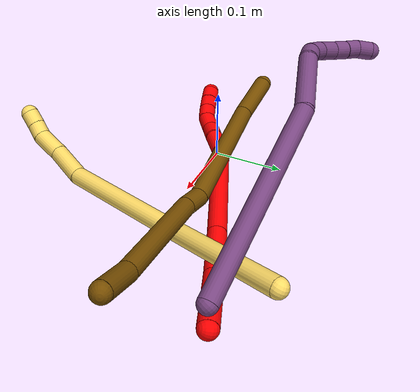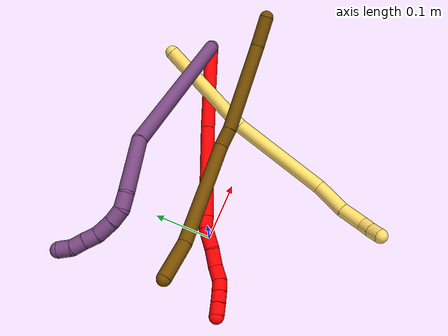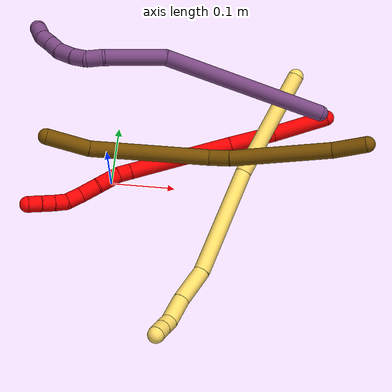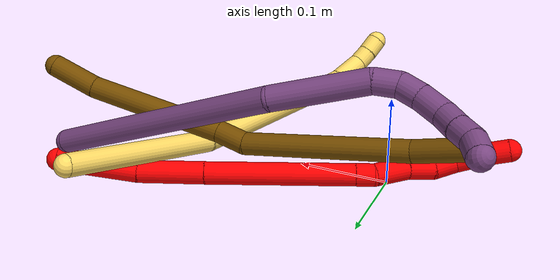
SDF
<sdf version="1.7">
 <world name="default">
  <model name="2">
   <static>0</static>
   <link name="2">
    <collision name="collision-cylinder-e_1_1_4">
     <pose>-0.034417 -0.021229 0.018139 0.863728 -0.889203 -0.432279</pose>
     <geometry><cylinder><radius>0.0125</radius><length>0.088639</length></cylinder></geometry>
     <surface>
      <friction><ode><mu>1.16</mu><mu2>1.16</mu2><slip1>0</slip1><slip2>0</slip2></ode></friction>
      <contact><ode><kp>1e+06</kp><kd>1</kd><max_vel>0</max_vel><min_depth>0.001</min_depth></ode></contact>
     </surface>
    </collision>
    <visual name="visual-cylinder-e_1_1_4">
     <pose>-0.034417 -0.021229 0.018139 0.863728 -0.889203 -0.432279</pose>
     <geometry><cylinder><radius>0.0125</radius><length>0.088639</length></cylinder></geometry>
     <material><ambient>1 0 0 1</ambient></material>
    </visual>
    <collision name="collision-cylinder-e_2_4_5">
     <pose>-0.095466 -0.06404 0.048982 1.03876 -0.816106 -0.484634</pose>
     <geometry><cylinder><radius>0.0125</radius><length>0.073114</length></cylinder></geometry>
     <surface>
      <friction><ode><mu>1.16</mu><mu2>1.16</mu2><slip1>0</slip1><slip2>0</slip2></ode></friction>
      <contact><ode><kp>1e+06</kp><kd>1</kd><max_vel>0</max_vel><min_depth>0.001</min_depth></ode></contact>
     </surface>
    </collision>
    <visual name="visual-cylinder-e_2_4_5">
     <pose>-0.095466 -0.06404 0.048982 1.03876 -0.816106 -0.484634</pose>
     <geometry><cylinder><radius>0.0125</radius><length>0.073114</length></cylinder></geometry>
     <material><ambient>1 0 0 1</ambient></material>
    </visual>
    <collision name="collision-cylinder-e_3_5_6">
     <pose>-0.182433 -0.133904 0.088757 1.0598 -0.828446 -0.504135</pose>
     <geometry><cylinder><radius>0.0125</radius><length>0.16376</length></cylinder></geometry>
     <surface>
      <friction><ode><mu>1.16</mu><mu2>1.16</mu2><slip1>0</slip1><slip2>0</slip2></ode></friction>
      <contact><ode><kp>1e+06</kp><kd>1</kd><max_vel>0</max_vel><min_depth>0.001</min_depth></ode></contact>
     </surface>
    </collision>
    <visual name="visual-cylinder-e_3_5_6">
     <pose>-0.182433 -0.133904 0.088757 1.0598 -0.828446 -0.504135</pose>
     <geometry><cylinder><radius>0.0125</radius><length>0.16376</length></cylinder></geometry>
     <material><ambient>1 0 0 1</ambient></material>
    </visual>
    <collision name="collision-cylinder-e_4_6_7">
     <pose>-0.250382 -0.188253 0.119227 1.06001 -0.830535 -0.505622</pose>
     <geometry><cylinder><radius>0.0125</radius><length>0.020625</length></cylinder></geometry>
     <surface>
      <friction><ode><mu>1.16</mu><mu2>1.16</mu2><slip1>0</slip1><slip2>0</slip2></ode></friction>
      <contact><ode><kp>1e+06</kp><kd>1</kd><max_vel>0</max_vel><min_depth>0.001</min_depth></ode></contact>
     </surface>
    </collision>
    <visual name="visual-cylinder-e_4_6_7">
     <pose>-0.250382 -0.188253 0.119227 1.06001 -0.830535 -0.505622</pose>
     <geometry><cylinder><radius>0.0125</radius><length>0.020625</length></cylinder></geometry>
     <material><ambient>1 0 0 1</ambient></material>
    </visual>
    <collision name="collision-cylinder-e_5_7_8">
     <pose>-0.273144 -0.20528 0.123243 1.51467 -0.94374 -0.899028</pose>
     <geometry><cylinder><radius>0.0125</radius><length>0.037413</length></cylinder></geometry>
     <surface>
      <friction><ode><mu>1.16</mu><mu2>1.16</mu2><slip1>0</slip1><slip2>0</slip2></ode></friction>
      <contact><ode><kp>1e+06</kp><kd>1</kd><max_vel>0</max_vel><min_depth>0.001</min_depth></ode></contact>
     </surface>
    </collision>
    <visual name="visual-cylinder-e_5_7_8">
     <pose>-0.273144 -0.20528 0.123243 1.51467 -0.94374 -0.899028</pose>
     <geometry><cylinder><radius>0.0125</radius><length>0.037413</length></cylinder></geometry>
     <material><ambient>1 0 0 1</ambient></material>
    </visual>
    <collision name="collision-cylinder-e_6_8_9">
     <pose>-0.301272 -0.223167 0.126574 1.19727 -1.05029 -0.752788</pose>
     <geometry><cylinder><radius>0.0125</radius><length>0.029922</length></cylinder></geometry>
     <surface>
      <friction><ode><mu>1.16</mu><mu2>1.16</mu2><slip1>0</slip1><slip2>0</slip2></ode></friction>
      <contact><ode><kp>1e+06</kp><kd>1</kd><max_vel>0</max_vel><min_depth>0.001</min_depth></ode></contact>
     </surface>
    </collision>
    <visual name="visual-cylinder-e_6_8_9">
     <pose>-0.301272 -0.223167 0.126574 1.19727 -1.05029 -0.752788</pose>
     <geometry><cylinder><radius>0.0125</radius><length>0.029922</length></cylinder></geometry>
     <material><ambient>1 0 0 1</ambient></material>
    </visual>
    <collision name="collision-cylinder-e_7_9_10">
     <pose>-0.323887 -0.238626 0.129174 1.58425 -0.846059 -0.856174</pose>
     <geometry><cylinder><radius>0.0125</radius><length>0.025741</length></cylinder></geometry>
     <surface>
      <friction><ode><mu>1.16</mu><mu2>1.16</mu2><slip1>0</slip1><slip2>0</slip2></ode></friction>
      <contact><ode><kp>1e+06</kp><kd>1</kd><max_vel>0</max_vel><min_depth>0.001</min_depth></ode></contact>
     </surface>
    </collision>
    <visual name="visual-cylinder-e_7_9_10">
     <pose>-0.323887 -0.238626 0.129174 1.58425 -0.846059 -0.856174</pose>
     <geometry><cylinder><radius>0.0125</radius><length>0.025741</length></cylinder></geometry>
     <material><ambient>1 0 0 1</ambient></material>
    </visual>
    <collision name="collision-cylinder-e_8_10_11">
     <pose>-0.339179 -0.255248 0.131413 1.2877 -0.591191 -0.449387</pose>
     <geometry><cylinder><radius>0.0125</radius><length>0.020297</length></cylinder></geometry>
     <surface>
      <friction><ode><mu>1.16</mu><mu2>1.16</mu2><slip1>0</slip1><slip2>0</slip2></ode></friction>
      <contact><ode><kp>1e+06</kp><kd>1</kd><max_vel>0</max_vel><min_depth>0.001</min_depth></ode></contact>
     </surface>
    </collision>
    <visual name="visual-cylinder-e_8_10_11">
     <pose>-0.339179 -0.255248 0.131413 1.2877 -0.591191 -0.449387</pose>
     <geometry><cylinder><radius>0.0125</radius><length>0.020297</length></cylinder></geometry>
     <material><ambient>1 0 0 1</ambient></material>
    </visual>
    <collision name="collision-cylinder-e_9_11_12">
     <pose>-0.350062 -0.271512 0.136502 1.24793 -0.545094 -0.39713</pose>
     <geometry><cylinder><radius>0.0125</radius><length>0.020161</length></cylinder></geometry>
     <surface>
      <friction><ode><mu>1.16</mu><mu2>1.16</mu2><slip1>0</slip1><slip2>0</slip2></ode></friction>
      <contact><ode><kp>1e+06</kp><kd>1</kd><max_vel>0</max_vel><min_depth>0.001</min_depth></ode></contact>
     </surface>
    </collision>
    <visual name="visual-cylinder-e_9_11_12">
     <pose>-0.350062 -0.271512 0.136502 1.24793 -0.545094 -0.39713</pose>
     <geometry><cylinder><radius>0.0125</radius><length>0.020161</length></cylinder></geometry>
     <material><ambient>1 0 0 1</ambient></material>
    </visual>
    <collision name="collision-cylinder-e_10_12_2">
     <pose>-0.360792 -0.287573 0.142527 1.17549 -0.572186 -0.387092</pose>
     <geometry><cylinder><radius>0.0125</radius><length>0.020328</length></cylinder></geometry>
     <surface>
      <friction><ode><mu>1.16</mu><mu2>1.16</mu2><slip1>0</slip1><slip2>0</slip2></ode></friction>
      <contact><ode><kp>1e+06</kp><kd>1</kd><max_vel>0</max_vel><min_depth>0.001</min_depth></ode></contact>
     </surface>
    </collision>
    <visual name="visual-cylinder-e_10_12_2">
     <pose>-0.360792 -0.287573 0.142527 1.17549 -0.572186 -0.387092</pose>
     <geometry><cylinder><radius>0.0125</radius><length>0.020328</length></cylinder></geometry>
     <material><ambient>1 0 0 1</ambient></material>
    </visual>
    <collision name="collision-sphere-2">
     <pose>-0.366296 -0.295458 0.145818 0 -0 0</pose>
     <geometry><sphere><radius>0.0125</radius></sphere></geometry>
     <surface>
      <friction><ode><mu>1.16</mu><mu2>1.16</mu2><slip1>0</slip1><slip2>0</slip2></ode></friction>
      <contact><ode><kp>1e+06</kp><kd>1</kd><max_vel>0</max_vel><min_depth>0.001</min_depth></ode></contact>
     </surface>
    </collision>
    <visual name="visual-sphere-2">
     <pose>-0.366296 -0.295458 0.145818 0 -0 0</pose>
     <geometry><sphere><radius>0.0125</radius></sphere></geometry>
     <material><ambient>1 0 0 1</ambient></material>
    </visual>
    <collision name="collision-sphere-12">
     <pose>-0.355289 -0.279687 0.139236 0 -0 0</pose>
     <geometry><sphere><radius>0.0125</radius></sphere></geometry>
     <surface>
      <friction><ode><mu>1.16</mu><mu2>1.16</mu2><slip1>0</slip1><slip2>0</slip2></ode></friction>
      <contact><ode><kp>1e+06</kp><kd>1</kd><max_vel>0</max_vel><min_depth>0.001</min_depth></ode></contact>
     </surface>
    </collision>
    <visual name="visual-sphere-12">
     <pose>-0.355289 -0.279687 0.139236 0 -0 0</pose>
     <geometry><sphere><radius>0.0125</radius></sphere></geometry>
     <material><ambient>1 0 0 1</ambient></material>
    </visual>
    <collision name="collision-sphere-11">
     <pose>-0.344835 -0.263338 0.133767 0 -0 0</pose>
     <geometry><sphere><radius>0.0125</radius></sphere></geometry>
     <surface>
      <friction><ode><mu>1.16</mu><mu2>1.16</mu2><slip1>0</slip1><slip2>0</slip2></ode></friction>
      <contact><ode><kp>1e+06</kp><kd>1</kd><max_vel>0</max_vel><min_depth>0.001</min_depth></ode></contact>
     </surface>
    </collision>
    <visual name="visual-sphere-11">
     <pose>-0.344835 -0.263338 0.133767 0 -0 0</pose>
     <geometry><sphere><radius>0.0125</radius></sphere></geometry>
     <material><ambient>1 0 0 1</ambient></material>
    </visual>
    <collision name="collision-sphere-10">
     <pose>-0.333523 -0.247157 0.129059 0 -0 0</pose>
     <geometry><sphere><radius>0.0125</radius></sphere></geometry>
     <surface>
      <friction><ode><mu>1.16</mu><mu2>1.16</mu2><slip1>0</slip1><slip2>0</slip2></ode></friction>
      <contact><ode><kp>1e+06</kp><kd>1</kd><max_vel>0</max_vel><min_depth>0.001</min_depth></ode></contact>
     </surface>
    </collision>
    <visual name="visual-sphere-10">
     <pose>-0.333523 -0.247157 0.129059 0 -0 0</pose>
     <geometry><sphere><radius>0.0125</radius></sphere></geometry>
     <material><ambient>1 0 0 1</ambient></material>
    </visual>
    <collision name="collision-sphere-9">
     <pose>-0.314251 -0.230094 0.129289 0 -0 0</pose>
     <geometry><sphere><radius>0.0125</radius></sphere></geometry>
     <surface>
      <friction><ode><mu>1.16</mu><mu2>1.16</mu2><slip1>0</slip1><slip2>0</slip2></ode></friction>
      <contact><ode><kp>1e+06</kp><kd>1</kd><max_vel>0</max_vel><min_depth>0.001</min_depth></ode></contact>
     </surface>
    </collision>
    <visual name="visual-sphere-9">
     <pose>-0.314251 -0.230094 0.129289 0 -0 0</pose>
     <geometry><sphere><radius>0.0125</radius></sphere></geometry>
     <material><ambient>1 0 0 1</ambient></material>
    </visual>
    <collision name="collision-sphere-4">
     <pose>-0.068835 -0.042458 0.036278 0 -0 0</pose>
     <geometry><sphere><radius>0.0125</radius></sphere></geometry>
     <surface>
      <friction><ode><mu>1.16</mu><mu2>1.16</mu2><slip1>0</slip1><slip2>0</slip2></ode></friction>
      <contact><ode><kp>1e+06</kp><kd>1</kd><max_vel>0</max_vel><min_depth>0.001</min_depth></ode></contact>
     </surface>
    </collision>
    <visual name="visual-sphere-4">
     <pose>-0.068835 -0.042458 0.036278 0 -0 0</pose>
     <geometry><sphere><radius>0.0125</radius></sphere></geometry>
     <material><ambient>1 0 0 1</ambient></material>
    </visual>
    <collision name="collision-sphere-1">
     <geometry><sphere><radius>0.0125</radius></sphere></geometry>
     <surface>
      <friction><ode><mu>1.16</mu><mu2>1.16</mu2><slip1>0</slip1><slip2>0</slip2></ode></friction>
      <contact><ode><kp>1e+06</kp><kd>1</kd><max_vel>0</max_vel><min_depth>0.001</min_depth></ode></contact>
     </surface>
    </collision>
    <visual name="visual-sphere-1">
     <geometry><sphere><radius>0.0125</radius></sphere></geometry>
     <material><ambient>1 0 0 1</ambient></material>
    </visual>
    <collision name="collision-sphere-8">
     <pose>-0.288292 -0.216239 0.123859 0 -0 0</pose>
     <geometry><sphere><radius>0.0125</radius></sphere></geometry>
     <surface>
      <friction><ode><mu>1.16</mu><mu2>1.16</mu2><slip1>0</slip1><slip2>0</slip2></ode></friction>
      <contact><ode><kp>1e+06</kp><kd>1</kd><max_vel>0</max_vel><min_depth>0.001</min_depth></ode></contact>
     </surface>
    </collision>
    <visual name="visual-sphere-8">
     <pose>-0.288292 -0.216239 0.123859 0 -0 0</pose>
     <geometry><sphere><radius>0.0125</radius></sphere></geometry>
     <material><ambient>1 0 0 1</ambient></material>
    </visual>
    <collision name="collision-sphere-5">
     <pose>-0.122097 -0.085622 0.061687 0 -0 0</pose>
     <geometry><sphere><radius>0.0125</radius></sphere></geometry>
     <surface>
      <friction><ode><mu>1.16</mu><mu2>1.16</mu2><slip1>0</slip1><slip2>0</slip2></ode></friction>
      <contact><ode><kp>1e+06</kp><kd>1</kd><max_vel>0</max_vel><min_depth>0.001</min_depth></ode></contact>
     </surface>
    </collision>
    <visual name="visual-sphere-5">
     <pose>-0.122097 -0.085622 0.061687 0 -0 0</pose>
     <geometry><sphere><radius>0.0125</radius></sphere></geometry>
     <material><ambient>1 0 0 1</ambient></material>
    </visual>
    <collision name="collision-sphere-6">
     <pose>-0.242769 -0.182185 0.115827 0 -0 0</pose>
     <geometry><sphere><radius>0.0125</radius></sphere></geometry>
     <surface>
      <friction><ode><mu>1.16</mu><mu2>1.16</mu2><slip1>0</slip1><slip2>0</slip2></ode></friction>
      <contact><ode><kp>1e+06</kp><kd>1</kd><max_vel>0</max_vel><min_depth>0.001</min_depth></ode></contact>
     </surface>
    </collision>
    <visual name="visual-sphere-6">
     <pose>-0.242769 -0.182185 0.115827 0 -0 0</pose>
     <geometry><sphere><radius>0.0125</radius></sphere></geometry>
     <material><ambient>1 0 0 1</ambient></material>
    </visual>
    <collision name="collision-sphere-7">
     <pose>-0.257996 -0.194321 0.122627 0 -0 0</pose>
     <geometry><sphere><radius>0.0125</radius></sphere></geometry>
     <surface>
      <friction><ode><mu>1.16</mu><mu2>1.16</mu2><slip1>0</slip1><slip2>0</slip2></ode></friction>
      <contact><ode><kp>1e+06</kp><kd>1</kd><max_vel>0</max_vel><min_depth>0.001</min_depth></ode></contact>
     </surface>
    </collision>
    <visual name="visual-sphere-7">
     <pose>-0.257996 -0.194321 0.122627 0 -0 0</pose>
     <geometry><sphere><radius>0.0125</radius></sphere></geometry>
     <material><ambient>1 0 0 1</ambient></material>
    </visual>
    <inertial>
     <pose>-0.187834 -0.138751 0.084446 0 -0 0</pose>
     <mass>0.5</mass>
     <inertia>
      <ixx>0.000101</ixx>
      <ixy>0</ixy>
      <ixz>0</ixz>
      <iyy>0.000185</iyy>
      <iyz>0</iyz>
      <izz>0.000653</izz>
     </inertia>
    </inertial>
   </link>
   <pose>0.33089 0.13871 0.023168 -1.99876 -0.490523 0.970247</pose>
  </model>
  <model name="5">
   <static>0</static>
   <link name="5">
    <collision name="collision-cylinder-e_1_1_4">
     <pose>-0.018793 -0.0859 0.023698 1.30161 -0.207853 -0.158515</pose>
     <geometry><cylinder><radius>0.0125</radius><length>0.182138</length></cylinder></geometry>
     <surface>
      <friction><ode><mu>1.16</mu><mu2>1.16</mu2><slip1>0</slip1><slip2>0</slip2></ode></friction>
      <contact><ode><kp>1e+06</kp><kd>1</kd><max_vel>0</max_vel><min_depth>0.001</min_depth></ode></contact>
     </surface>
    </collision>
    <visual name="visual-cylinder-e_1_1_4">
     <pose>-0.018793 -0.0859 0.023698 1.30161 -0.207853 -0.158515</pose>
     <geometry><cylinder><radius>0.0125</radius><length>0.182138</length></cylinder></geometry>
     <material><ambient>1 0.858824 0.4 1</ambient></material>
    </visual>
    <collision name="collision-cylinder-e_2_4_5">
     <pose>-0.07235 -0.251766 0.064221 1.36342 -0.402234 -0.327912</pose>
     <geometry><cylinder><radius>0.0125</radius><length>0.177608</length></cylinder></geometry>
     <surface>
      <friction><ode><mu>1.16</mu><mu2>1.16</mu2><slip1>0</slip1><slip2>0</slip2></ode></friction>
      <contact><ode><kp>1e+06</kp><kd>1</kd><max_vel>0</max_vel><min_depth>0.001</min_depth></ode></contact>
     </surface>
    </collision>
    <visual name="visual-cylinder-e_2_4_5">
     <pose>-0.07235 -0.251766 0.064221 1.36342 -0.402234 -0.327912</pose>
     <geometry><cylinder><radius>0.0125</radius><length>0.177608</length></cylinder></geometry>
     <material><ambient>1 0.858824 0.4 1</ambient></material>
    </visual>
    <collision name="collision-cylinder-e_3_5_6">
     <pose>-0.116819 -0.35861 0.07929 1.63602 -0.345792 -0.368604</pose>
     <geometry><cylinder><radius>0.0125</radius><length>0.057262</length></cylinder></geometry>
     <surface>
      <friction><ode><mu>1.16</mu><mu2>1.16</mu2><slip1>0</slip1><slip2>0</slip2></ode></friction>
      <contact><ode><kp>1e+06</kp><kd>1</kd><max_vel>0</max_vel><min_depth>0.001</min_depth></ode></contact>
     </surface>
    </collision>
    <visual name="visual-cylinder-e_3_5_6">
     <pose>-0.116819 -0.35861 0.07929 1.63602 -0.345792 -0.368604</pose>
     <geometry><cylinder><radius>0.0125</radius><length>0.057262</length></cylinder></geometry>
     <material><ambient>1 0.858824 0.4 1</ambient></material>
    </visual>
    <collision name="collision-cylinder-e_4_6_7">
     <pose>-0.137017 -0.403827 0.075852 1.6623 -0.517974 -0.56518</pose>
     <geometry><cylinder><radius>0.0125</radius><length>0.042389</length></cylinder></geometry>
     <surface>
      <friction><ode><mu>1.16</mu><mu2>1.16</mu2><slip1>0</slip1><slip2>0</slip2></ode></friction>
      <contact><ode><kp>1e+06</kp><kd>1</kd><max_vel>0</max_vel><min_depth>0.001</min_depth></ode></contact>
     </surface>
    </collision>
    <visual name="visual-cylinder-e_4_6_7">
     <pose>-0.137017 -0.403827 0.075852 1.6623 -0.517974 -0.56518</pose>
     <geometry><cylinder><radius>0.0125</radius><length>0.042389</length></cylinder></geometry>
     <material><ambient>1 0.858824 0.4 1</ambient></material>
    </visual>
    <collision name="collision-cylinder-e_5_7_8">
     <pose>-0.152433 -0.429723 0.069662 2.10852 -0.50985 -0.860321</pose>
     <geometry><cylinder><radius>0.0125</radius><length>0.020167</length></cylinder></geometry>
     <surface>
      <friction><ode><mu>1.16</mu><mu2>1.16</mu2><slip1>0</slip1><slip2>0</slip2></ode></friction>
      <contact><ode><kp>1e+06</kp><kd>1</kd><max_vel>0</max_vel><min_depth>0.001</min_depth></ode></contact>
     </surface>
    </collision>
    <visual name="visual-cylinder-e_5_7_8">
     <pose>-0.152433 -0.429723 0.069662 2.10852 -0.50985 -0.860321</pose>
     <geometry><cylinder><radius>0.0125</radius><length>0.020167</length></cylinder></geometry>
     <material><ambient>1 0.858824 0.4 1</ambient></material>
    </visual>
    <collision name="collision-cylinder-e_6_8_2">
     <pose>-0.163019 -0.444512 0.060678 2.12515 -0.587723 -0.995349</pose>
     <geometry><cylinder><radius>0.0125</radius><length>0.020436</length></cylinder></geometry>
     <surface>
      <friction><ode><mu>1.16</mu><mu2>1.16</mu2><slip1>0</slip1><slip2>0</slip2></ode></friction>
      <contact><ode><kp>1e+06</kp><kd>1</kd><max_vel>0</max_vel><min_depth>0.001</min_depth></ode></contact>
     </surface>
    </collision>
    <visual name="visual-cylinder-e_6_8_2">
     <pose>-0.163019 -0.444512 0.060678 2.12515 -0.587723 -0.995349</pose>
     <geometry><cylinder><radius>0.0125</radius><length>0.020436</length></cylinder></geometry>
     <material><ambient>1 0.858824 0.4 1</ambient></material>
    </visual>
    <collision name="collision-sphere-2">
     <pose>-0.168684 -0.451742 0.056202 0 -0 0</pose>
     <geometry><sphere><radius>0.0125</radius></sphere></geometry>
     <surface>
      <friction><ode><mu>1.16</mu><mu2>1.16</mu2><slip1>0</slip1><slip2>0</slip2></ode></friction>
      <contact><ode><kp>1e+06</kp><kd>1</kd><max_vel>0</max_vel><min_depth>0.001</min_depth></ode></contact>
     </surface>
    </collision>
    <visual name="visual-sphere-2">
     <pose>-0.168684 -0.451742 0.056202 0 -0 0</pose>
     <geometry><sphere><radius>0.0125</radius></sphere></geometry>
     <material><ambient>1 0.858824 0.4 1</ambient></material>
    </visual>
    <collision name="collision-sphere-4">
     <pose>-0.037586 -0.1718 0.047396 0 -0 0</pose>
     <geometry><sphere><radius>0.0125</radius></sphere></geometry>
     <surface>
      <friction><ode><mu>1.16</mu><mu2>1.16</mu2><slip1>0</slip1><slip2>0</slip2></ode></friction>
      <contact><ode><kp>1e+06</kp><kd>1</kd><max_vel>0</max_vel><min_depth>0.001</min_depth></ode></contact>
     </surface>
    </collision>
    <visual name="visual-sphere-4">
     <pose>-0.037586 -0.1718 0.047396 0 -0 0</pose>
     <geometry><sphere><radius>0.0125</radius></sphere></geometry>
     <material><ambient>1 0.858824 0.4 1</ambient></material>
    </visual>
    <collision name="collision-sphere-1">
     <geometry><sphere><radius>0.0125</radius></sphere></geometry>
     <surface>
      <friction><ode><mu>1.16</mu><mu2>1.16</mu2><slip1>0</slip1><slip2>0</slip2></ode></friction>
      <contact><ode><kp>1e+06</kp><kd>1</kd><max_vel>0</max_vel><min_depth>0.001</min_depth></ode></contact>
     </surface>
    </collision>
    <visual name="visual-sphere-1">
     <geometry><sphere><radius>0.0125</radius></sphere></geometry>
     <material><ambient>1 0.858824 0.4 1</ambient></material>
    </visual>
    <collision name="collision-sphere-8">
     <pose>-0.157354 -0.437282 0.065154 0 -0 0</pose>
     <geometry><sphere><radius>0.0125</radius></sphere></geometry>
     <surface>
      <friction><ode><mu>1.16</mu><mu2>1.16</mu2><slip1>0</slip1><slip2>0</slip2></ode></friction>
      <contact><ode><kp>1e+06</kp><kd>1</kd><max_vel>0</max_vel><min_depth>0.001</min_depth></ode></contact>
     </surface>
    </collision>
    <visual name="visual-sphere-8">
     <pose>-0.157354 -0.437282 0.065154 0 -0 0</pose>
     <geometry><sphere><radius>0.0125</radius></sphere></geometry>
     <material><ambient>1 0.858824 0.4 1</ambient></material>
    </visual>
    <collision name="collision-sphere-5">
     <pose>-0.107115 -0.331732 0.081046 0 -0 0</pose>
     <geometry><sphere><radius>0.0125</radius></sphere></geometry>
     <surface>
      <friction><ode><mu>1.16</mu><mu2>1.16</mu2><slip1>0</slip1><slip2>0</slip2></ode></friction>
      <contact><ode><kp>1e+06</kp><kd>1</kd><max_vel>0</max_vel><min_depth>0.001</min_depth></ode></contact>
     </surface>
    </collision>
    <visual name="visual-sphere-5">
     <pose>-0.107115 -0.331732 0.081046 0 -0 0</pose>
     <geometry><sphere><radius>0.0125</radius></sphere></geometry>
     <material><ambient>1 0.858824 0.4 1</ambient></material>
    </visual>
    <collision name="collision-sphere-6">
     <pose>-0.126523 -0.385489 0.077535 0 -0 0</pose>
     <geometry><sphere><radius>0.0125</radius></sphere></geometry>
     <surface>
      <friction><ode><mu>1.16</mu><mu2>1.16</mu2><slip1>0</slip1><slip2>0</slip2></ode></friction>
      <contact><ode><kp>1e+06</kp><kd>1</kd><max_vel>0</max_vel><min_depth>0.001</min_depth></ode></contact>
     </surface>
    </collision>
    <visual name="visual-sphere-6">
     <pose>-0.126523 -0.385489 0.077535 0 -0 0</pose>
     <geometry><sphere><radius>0.0125</radius></sphere></geometry>
     <material><ambient>1 0.858824 0.4 1</ambient></material>
    </visual>
    <collision name="collision-sphere-7">
     <pose>-0.147511 -0.422164 0.07417 0 -0 0</pose>
     <geometry><sphere><radius>0.0125</radius></sphere></geometry>
     <surface>
      <friction><ode><mu>1.16</mu><mu2>1.16</mu2><slip1>0</slip1><slip2>0</slip2></ode></friction>
      <contact><ode><kp>1e+06</kp><kd>1</kd><max_vel>0</max_vel><min_depth>0.001</min_depth></ode></contact>
     </surface>
    </collision>
    <visual name="visual-sphere-7">
     <pose>-0.147511 -0.422164 0.07417 0 -0 0</pose>
     <geometry><sphere><radius>0.0125</radius></sphere></geometry>
     <material><ambient>1 0.858824 0.4 1</ambient></material>
    </visual>
    <inertial>
     <pose>-0.070352 -0.231528 0.052246 0 -0 0</pose>
     <mass>0.5</mass>
     <inertia>
      <ixx>0.000685</ixx>
      <ixy>0</ixy>
      <ixz>0</ixz>
      <iyy>3.7e-05</iyy>
      <iyz>0</iyz>
      <izz>0.001241</izz>
     </inertia>
    </inertial>
   </link>
   <pose>0.27656 0.191671 0.055272 3.04478 0.539977 2.35806</pose>
  </model>
  <model name="12">
   <static>0</static>
   <link name="12">
    <collision name="collision-cylinder-e_1_1_4">
     <pose>-0.007888 0.005642 -0.02495 -2.91921 -0.299114 1.86618</pose>
     <geometry><cylinder><radius>0.0125</radius><length>0.053537</length></cylinder></geometry>
     <surface>
      <friction><ode><mu>1.16</mu><mu2>1.16</mu2><slip1>0</slip1><slip2>0</slip2></ode></friction>
      <contact><ode><kp>1e+06</kp><kd>1</kd><max_vel>0</max_vel><min_depth>0.001</min_depth></ode></contact>
     </surface>
    </collision>
    <visual name="visual-cylinder-e_1_1_4">
     <pose>-0.007888 0.005642 -0.02495 -2.91921 -0.299114 1.86618</pose>
     <geometry><cylinder><radius>0.0125</radius><length>0.053537</length></cylinder></geometry>
     <material><ambient>0.466667 0.301961 0 1</ambient></material>
    </visual>
    <collision name="collision-cylinder-e_2_4_5">
     <pose>-0.04683 0.015765 -0.12236 -3.07983 -0.404197 2.84232</pose>
     <geometry><cylinder><radius>0.0125</radius><length>0.157922</length></cylinder></geometry>
     <surface>
      <friction><ode><mu>1.16</mu><mu2>1.16</mu2><slip1>0</slip1><slip2>0</slip2></ode></friction>
      <contact><ode><kp>1e+06</kp><kd>1</kd><max_vel>0</max_vel><min_depth>0.001</min_depth></ode></contact>
     </surface>
    </collision>
    <visual name="visual-cylinder-e_2_4_5">
     <pose>-0.04683 0.015765 -0.12236 -3.07983 -0.404197 2.84232</pose>
     <geometry><cylinder><radius>0.0125</radius><length>0.157922</length></cylinder></geometry>
     <material><ambient>0.466667 0.301961 0 1</ambient></material>
    </visual>
    <collision name="collision-cylinder-e_3_5_6">
     <pose>-0.086125 0.022604 -0.209293 -2.98003 -0.512023 2.54169</pose>
     <geometry><cylinder><radius>0.0125</radius><length>0.033641</length></cylinder></geometry>
     <surface>
      <friction><ode><mu>1.16</mu><mu2>1.16</mu2><slip1>0</slip1><slip2>0</slip2></ode></friction>
      <contact><ode><kp>1e+06</kp><kd>1</kd><max_vel>0</max_vel><min_depth>0.001</min_depth></ode></contact>
     </surface>
    </collision>
    <visual name="visual-cylinder-e_3_5_6">
     <pose>-0.086125 0.022604 -0.209293 -2.98003 -0.512023 2.54169</pose>
     <geometry><cylinder><radius>0.0125</radius><length>0.033641</length></cylinder></geometry>
     <material><ambient>0.466667 0.301961 0 1</ambient></material>
    </visual>
    <collision name="collision-cylinder-e_4_6_7">
     <pose>-0.143717 0.004885 -0.300152 2.88456 -0.558482 -2.29473</pose>
     <geometry><cylinder><radius>0.0125</radius><length>0.186264</length></cylinder></geometry>
     <surface>
      <friction><ode><mu>1.16</mu><mu2>1.16</mu2><slip1>0</slip1><slip2>0</slip2></ode></friction>
      <contact><ode><kp>1e+06</kp><kd>1</kd><max_vel>0</max_vel><min_depth>0.001</min_depth></ode></contact>
     </surface>
    </collision>
    <visual name="visual-cylinder-e_4_6_7">
     <pose>-0.143717 0.004885 -0.300152 2.88456 -0.558482 -2.29473</pose>
     <geometry><cylinder><radius>0.0125</radius><length>0.186264</length></cylinder></geometry>
     <material><ambient>0.466667 0.301961 0 1</ambient></material>
    </visual>
    <collision name="collision-cylinder-e_5_7_2">
     <pose>-0.216501 -0.024106 -0.399973 2.77812 -0.751638 -2.26988</pose>
     <geometry><cylinder><radius>0.0125</radius><length>0.068635</length></cylinder></geometry>
     <surface>
      <friction><ode><mu>1.16</mu><mu2>1.16</mu2><slip1>0</slip1><slip2>0</slip2></ode></friction>
      <contact><ode><kp>1e+06</kp><kd>1</kd><max_vel>0</max_vel><min_depth>0.001</min_depth></ode></contact>
     </surface>
    </collision>
    <visual name="visual-cylinder-e_5_7_2">
     <pose>-0.216501 -0.024106 -0.399973 2.77812 -0.751638 -2.26988</pose>
     <geometry><cylinder><radius>0.0125</radius><length>0.068635</length></cylinder></geometry>
     <material><ambient>0.466667 0.301961 0 1</ambient></material>
    </visual>
    <collision name="collision-sphere-2">
     <pose>-0.239934 -0.03302 -0.423406 0 -0 0</pose>
     <geometry><sphere><radius>0.0125</radius></sphere></geometry>
     <surface>
      <friction><ode><mu>1.16</mu><mu2>1.16</mu2><slip1>0</slip1><slip2>0</slip2></ode></friction>
      <contact><ode><kp>1e+06</kp><kd>1</kd><max_vel>0</max_vel><min_depth>0.001</min_depth></ode></contact>
     </surface>
    </collision>
    <visual name="visual-sphere-2">
     <pose>-0.239934 -0.03302 -0.423406 0 -0 0</pose>
     <geometry><sphere><radius>0.0125</radius></sphere></geometry>
     <material><ambient>0.466667 0.301961 0 1</ambient></material>
    </visual>
    <collision name="collision-sphere-7">
     <pose>-0.193067 -0.015193 -0.376539 0 -0 0</pose>
     <geometry><sphere><radius>0.0125</radius></sphere></geometry>
     <surface>
      <friction><ode><mu>1.16</mu><mu2>1.16</mu2><slip1>0</slip1><slip2>0</slip2></ode></friction>
      <contact><ode><kp>1e+06</kp><kd>1</kd><max_vel>0</max_vel><min_depth>0.001</min_depth></ode></contact>
     </surface>
    </collision>
    <visual name="visual-sphere-7">
     <pose>-0.193067 -0.015193 -0.376539 0 -0 0</pose>
     <geometry><sphere><radius>0.0125</radius></sphere></geometry>
     <material><ambient>0.466667 0.301961 0 1</ambient></material>
    </visual>
    <collision name="collision-sphere-6">
     <pose>-0.094366 0.024963 -0.223765 0 -0 0</pose>
     <geometry><sphere><radius>0.0125</radius></sphere></geometry>
     <surface>
      <friction><ode><mu>1.16</mu><mu2>1.16</mu2><slip1>0</slip1><slip2>0</slip2></ode></friction>
      <contact><ode><kp>1e+06</kp><kd>1</kd><max_vel>0</max_vel><min_depth>0.001</min_depth></ode></contact>
     </surface>
    </collision>
    <visual name="visual-sphere-6">
     <pose>-0.094366 0.024963 -0.223765 0 -0 0</pose>
     <geometry><sphere><radius>0.0125</radius></sphere></geometry>
     <material><ambient>0.466667 0.301961 0 1</ambient></material>
    </visual>
    <collision name="collision-sphere-5">
     <pose>-0.077884 0.020246 -0.19482 0 -0 0</pose>
     <geometry><sphere><radius>0.0125</radius></sphere></geometry>
     <surface>
      <friction><ode><mu>1.16</mu><mu2>1.16</mu2><slip1>0</slip1><slip2>0</slip2></ode></friction>
      <contact><ode><kp>1e+06</kp><kd>1</kd><max_vel>0</max_vel><min_depth>0.001</min_depth></ode></contact>
     </surface>
    </collision>
    <visual name="visual-sphere-5">
     <pose>-0.077884 0.020246 -0.19482 0 -0 0</pose>
     <geometry><sphere><radius>0.0125</radius></sphere></geometry>
     <material><ambient>0.466667 0.301961 0 1</ambient></material>
    </visual>
    <collision name="collision-sphere-1">
     <geometry><sphere><radius>0.0125</radius></sphere></geometry>
     <surface>
      <friction><ode><mu>1.16</mu><mu2>1.16</mu2><slip1>0</slip1><slip2>0</slip2></ode></friction>
      <contact><ode><kp>1e+06</kp><kd>1</kd><max_vel>0</max_vel><min_depth>0.001</min_depth></ode></contact>
     </surface>
    </collision>
    <visual name="visual-sphere-1">
     <geometry><sphere><radius>0.0125</radius></sphere></geometry>
     <material><ambient>0.466667 0.301961 0 1</ambient></material>
    </visual>
    <collision name="collision-sphere-4">
     <pose>-0.015776 0.011284 -0.0499 0 -0 0</pose>
     <geometry><sphere><radius>0.0125</radius></sphere></geometry>
     <surface>
      <friction><ode><mu>1.16</mu><mu2>1.16</mu2><slip1>0</slip1><slip2>0</slip2></ode></friction>
      <contact><ode><kp>1e+06</kp><kd>1</kd><max_vel>0</max_vel><min_depth>0.001</min_depth></ode></contact>
     </surface>
    </collision>
    <visual name="visual-sphere-4">
     <pose>-0.015776 0.011284 -0.0499 0 -0 0</pose>
     <geometry><sphere><radius>0.0125</radius></sphere></geometry>
     <material><ambient>0.466667 0.301961 0 1</ambient></material>
    </visual>
    <inertial>
     <pose>-0.104688 0.005615 -0.222119 0 -0 0</pose>
     <mass>0.5</mass>
     <inertia>
      <ixx>-0.000897</ixx>
      <ixy>0</ixy>
      <ixz>0</ixz>
      <iyy>0.000499</iyy>
      <iyz>0</iyz>
      <izz>0.000517</izz>
     </inertia>
    </inertial>
   </link>
   <pose>0.38788 0.054849 0.09171 -1.18628 0.443117 -0.931529</pose>
  </model>
  <model name="20">
   <static>0</static>
   <link name="20">
    <collision name="collision-cylinder-e_1_1_4">
     <pose>0.041704 -0.04614 -0.118007 2.76888 0.317967 1.40944</pose>
     <geometry><cylinder><radius>0.0125</radius><length>0.266787</length></cylinder></geometry>
     <surface>
      <friction><ode><mu>1.16</mu><mu2>1.16</mu2><slip1>0</slip1><slip2>0</slip2></ode></friction>
      <contact><ode><kp>1e+06</kp><kd>1</kd><max_vel>0</max_vel><min_depth>0.001</min_depth></ode></contact>
     </surface>
    </collision>
    <visual name="visual-cylinder-e_1_1_4">
     <pose>0.041704 -0.04614 -0.118007 2.76888 0.317967 1.40944</pose>
     <geometry><cylinder><radius>0.0125</radius><length>0.266787</length></cylinder></geometry>
     <material><ambient>0.478431 0.278431 0.509804 1</ambient></material>
    </visual>
    <collision name="collision-cylinder-e_2_4_5">
     <pose>0.106464 -0.119064 -0.268464 2.45155 0.5013 1.238</pose>
     <geometry><cylinder><radius>0.0125</radius><length>0.095959</length></cylinder></geometry>
     <surface>
      <friction><ode><mu>1.16</mu><mu2>1.16</mu2><slip1>0</slip1><slip2>0</slip2></ode></friction>
      <contact><ode><kp>1e+06</kp><kd>1</kd><max_vel>0</max_vel><min_depth>0.001</min_depth></ode></contact>
     </surface>
    </collision>
    <visual name="visual-cylinder-e_2_4_5">
     <pose>0.106464 -0.119064 -0.268464 2.45155 0.5013 1.238</pose>
     <geometry><cylinder><radius>0.0125</radius><length>0.095959</length></cylinder></geometry>
     <material><ambient>0.478431 0.278431 0.509804 1</ambient></material>
    </visual>
    <collision name="collision-cylinder-e_3_5_6">
     <pose>0.138338 -0.150256 -0.308356 2.60686 0.794938 1.98534</pose>
     <geometry><cylinder><radius>0.0125</radius><length>0.024701</length></cylinder></geometry>
     <surface>
      <friction><ode><mu>1.16</mu><mu2>1.16</mu2><slip1>0</slip1><slip2>0</slip2></ode></friction>
      <contact><ode><kp>1e+06</kp><kd>1</kd><max_vel>0</max_vel><min_depth>0.001</min_depth></ode></contact>
     </surface>
    </collision>
    <visual name="visual-cylinder-e_3_5_6">
     <pose>0.138338 -0.150256 -0.308356 2.60686 0.794938 1.98534</pose>
     <geometry><cylinder><radius>0.0125</radius><length>0.024701</length></cylinder></geometry>
     <material><ambient>0.478431 0.278431 0.509804 1</ambient></material>
    </visual>
    <collision name="collision-cylinder-e_4_6_7">
     <pose>0.155409 -0.153336 -0.323381 -2.9682 0.820288 -2.747</pose>
     <geometry><cylinder><radius>0.0125</radius><length>0.022577</length></cylinder></geometry>
     <surface>
      <friction><ode><mu>1.16</mu><mu2>1.16</mu2><slip1>0</slip1><slip2>0</slip2></ode></friction>
      <contact><ode><kp>1e+06</kp><kd>1</kd><max_vel>0</max_vel><min_depth>0.001</min_depth></ode></contact>
     </surface>
    </collision>
    <visual name="visual-cylinder-e_4_6_7">
     <pose>0.155409 -0.153336 -0.323381 -2.9682 0.820288 -2.747</pose>
     <geometry><cylinder><radius>0.0125</radius><length>0.022577</length></cylinder></geometry>
     <material><ambient>0.478431 0.278431 0.509804 1</ambient></material>
    </visual>
    <collision name="collision-cylinder-e_5_7_8">
     <pose>0.172837 -0.148032 -0.340684 -2.75335 0.717944 -2.17638</pose>
     <geometry><cylinder><radius>0.0125</radius><length>0.027887</length></cylinder></geometry>
     <surface>
      <friction><ode><mu>1.16</mu><mu2>1.16</mu2><slip1>0</slip1><slip2>0</slip2></ode></friction>
      <contact><ode><kp>1e+06</kp><kd>1</kd><max_vel>0</max_vel><min_depth>0.001</min_depth></ode></contact>
     </surface>
    </collision>
    <visual name="visual-cylinder-e_5_7_8">
     <pose>0.172837 -0.148032 -0.340684 -2.75335 0.717944 -2.17638</pose>
     <geometry><cylinder><radius>0.0125</radius><length>0.027887</length></cylinder></geometry>
     <material><ambient>0.478431 0.278431 0.509804 1</ambient></material>
    </visual>
    <collision name="collision-cylinder-e_6_8_9">
     <pose>0.186635 -0.139132 -0.35854 -2.59727 0.452639 -1.37968</pose>
     <geometry><cylinder><radius>0.0125</radius><length>0.021149</length></cylinder></geometry>
     <surface>
      <friction><ode><mu>1.16</mu><mu2>1.16</mu2><slip1>0</slip1><slip2>0</slip2></ode></friction>
      <contact><ode><kp>1e+06</kp><kd>1</kd><max_vel>0</max_vel><min_depth>0.001</min_depth></ode></contact>
     </surface>
    </collision>
    <visual name="visual-cylinder-e_6_8_9">
     <pose>0.186635 -0.139132 -0.35854 -2.59727 0.452639 -1.37968</pose>
     <geometry><cylinder><radius>0.0125</radius><length>0.021149</length></cylinder></geometry>
     <material><ambient>0.478431 0.278431 0.509804 1</ambient></material>
    </visual>
    <collision name="collision-cylinder-e_7_9_10">
     <pose>0.196019 -0.13007 -0.374568 -2.65879 0.490576 -1.58741</pose>
     <geometry><cylinder><radius>0.0125</radius><length>0.020207</length></cylinder></geometry>
     <surface>
      <friction><ode><mu>1.16</mu><mu2>1.16</mu2><slip1>0</slip1><slip2>0</slip2></ode></friction>
      <contact><ode><kp>1e+06</kp><kd>1</kd><max_vel>0</max_vel><min_depth>0.001</min_depth></ode></contact>
     </surface>
    </collision>
    <visual name="visual-cylinder-e_7_9_10">
     <pose>0.196019 -0.13007 -0.374568 -2.65879 0.490576 -1.58741</pose>
     <geometry><cylinder><radius>0.0125</radius><length>0.020207</length></cylinder></geometry>
     <material><ambient>0.478431 0.278431 0.509804 1</ambient></material>
    </visual>
    <collision name="collision-cylinder-e_8_10_2">
     <pose>0.203568 -0.118576 -0.389213 -2.31328 0.272317 -0.604262</pose>
     <geometry><cylinder><radius>0.0125</radius><length>0.020734</length></cylinder></geometry>
     <surface>
      <friction><ode><mu>1.16</mu><mu2>1.16</mu2><slip1>0</slip1><slip2>0</slip2></ode></friction>
      <contact><ode><kp>1e+06</kp><kd>1</kd><max_vel>0</max_vel><min_depth>0.001</min_depth></ode></contact>
     </surface>
    </collision>
    <visual name="visual-cylinder-e_8_10_2">
     <pose>0.203568 -0.118576 -0.389213 -2.31328 0.272317 -0.604262</pose>
     <geometry><cylinder><radius>0.0125</radius><length>0.020734</length></cylinder></geometry>
     <material><ambient>0.478431 0.278431 0.509804 1</ambient></material>
    </visual>
    <collision name="collision-sphere-2">
     <pose>0.206356 -0.111219 -0.395964 0 -0 0</pose>
     <geometry><sphere><radius>0.0125</radius></sphere></geometry>
     <surface>
      <friction><ode><mu>1.16</mu><mu2>1.16</mu2><slip1>0</slip1><slip2>0</slip2></ode></friction>
      <contact><ode><kp>1e+06</kp><kd>1</kd><max_vel>0</max_vel><min_depth>0.001</min_depth></ode></contact>
     </surface>
    </collision>
    <visual name="visual-sphere-2">
     <pose>0.206356 -0.111219 -0.395964 0 -0 0</pose>
     <geometry><sphere><radius>0.0125</radius></sphere></geometry>
     <material><ambient>0.478431 0.278431 0.509804 1</ambient></material>
    </visual>
    <collision name="collision-sphere-10">
     <pose>0.200779 -0.125933 -0.382462 0 -0 0</pose>
     <geometry><sphere><radius>0.0125</radius></sphere></geometry>
     <surface>
      <friction><ode><mu>1.16</mu><mu2>1.16</mu2><slip1>0</slip1><slip2>0</slip2></ode></friction>
      <contact><ode><kp>1e+06</kp><kd>1</kd><max_vel>0</max_vel><min_depth>0.001</min_depth></ode></contact>
     </surface>
    </collision>
    <visual name="visual-sphere-10">
     <pose>0.200779 -0.125933 -0.382462 0 -0 0</pose>
     <geometry><sphere><radius>0.0125</radius></sphere></geometry>
     <material><ambient>0.478431 0.278431 0.509804 1</ambient></material>
    </visual>
    <collision name="collision-sphere-9">
     <pose>0.191259 -0.134207 -0.366675 0 -0 0</pose>
     <geometry><sphere><radius>0.0125</radius></sphere></geometry>
     <surface>
      <friction><ode><mu>1.16</mu><mu2>1.16</mu2><slip1>0</slip1><slip2>0</slip2></ode></friction>
      <contact><ode><kp>1e+06</kp><kd>1</kd><max_vel>0</max_vel><min_depth>0.001</min_depth></ode></contact>
     </surface>
    </collision>
    <visual name="visual-sphere-9">
     <pose>0.191259 -0.134207 -0.366675 0 -0 0</pose>
     <geometry><sphere><radius>0.0125</radius></sphere></geometry>
     <material><ambient>0.478431 0.278431 0.509804 1</ambient></material>
    </visual>
    <collision name="collision-sphere-4">
     <pose>0.083407 -0.09228 -0.236014 0 -0 0</pose>
     <geometry><sphere><radius>0.0125</radius></sphere></geometry>
     <surface>
      <friction><ode><mu>1.16</mu><mu2>1.16</mu2><slip1>0</slip1><slip2>0</slip2></ode></friction>
      <contact><ode><kp>1e+06</kp><kd>1</kd><max_vel>0</max_vel><min_depth>0.001</min_depth></ode></contact>
     </surface>
    </collision>
    <visual name="visual-sphere-4">
     <pose>0.083407 -0.09228 -0.236014 0 -0 0</pose>
     <geometry><sphere><radius>0.0125</radius></sphere></geometry>
     <material><ambient>0.478431 0.278431 0.509804 1</ambient></material>
    </visual>
    <collision name="collision-sphere-1">
     <geometry><sphere><radius>0.0125</radius></sphere></geometry>
     <surface>
      <friction><ode><mu>1.16</mu><mu2>1.16</mu2><slip1>0</slip1><slip2>0</slip2></ode></friction>
      <contact><ode><kp>1e+06</kp><kd>1</kd><max_vel>0</max_vel><min_depth>0.001</min_depth></ode></contact>
     </surface>
    </collision>
    <visual name="visual-sphere-1">
     <geometry><sphere><radius>0.0125</radius></sphere></geometry>
     <material><ambient>0.478431 0.278431 0.509804 1</ambient></material>
    </visual>
    <collision name="collision-sphere-8">
     <pose>0.18201 -0.144056 -0.350404 0 -0 0</pose>
     <geometry><sphere><radius>0.0125</radius></sphere></geometry>
     <surface>
      <friction><ode><mu>1.16</mu><mu2>1.16</mu2><slip1>0</slip1><slip2>0</slip2></ode></friction>
      <contact><ode><kp>1e+06</kp><kd>1</kd><max_vel>0</max_vel><min_depth>0.001</min_depth></ode></contact>
     </surface>
    </collision>
    <visual name="visual-sphere-8">
     <pose>0.18201 -0.144056 -0.350404 0 -0 0</pose>
     <geometry><sphere><radius>0.0125</radius></sphere></geometry>
     <material><ambient>0.478431 0.278431 0.509804 1</ambient></material>
    </visual>
    <collision name="collision-sphere-5">
     <pose>0.129522 -0.145848 -0.300914 0 -0 0</pose>
     <geometry><sphere><radius>0.0125</radius></sphere></geometry>
     <surface>
      <friction><ode><mu>1.16</mu><mu2>1.16</mu2><slip1>0</slip1><slip2>0</slip2></ode></friction>
      <contact><ode><kp>1e+06</kp><kd>1</kd><max_vel>0</max_vel><min_depth>0.001</min_depth></ode></contact>
     </surface>
    </collision>
    <visual name="visual-sphere-5">
     <pose>0.129522 -0.145848 -0.300914 0 -0 0</pose>
     <geometry><sphere><radius>0.0125</radius></sphere></geometry>
     <material><ambient>0.478431 0.278431 0.509804 1</ambient></material>
    </visual>
    <collision name="collision-sphere-6">
     <pose>0.147154 -0.154664 -0.315798 0 -0 0</pose>
     <geometry><sphere><radius>0.0125</radius></sphere></geometry>
     <surface>
      <friction><ode><mu>1.16</mu><mu2>1.16</mu2><slip1>0</slip1><slip2>0</slip2></ode></friction>
      <contact><ode><kp>1e+06</kp><kd>1</kd><max_vel>0</max_vel><min_depth>0.001</min_depth></ode></contact>
     </surface>
    </collision>
    <visual name="visual-sphere-6">
     <pose>0.147154 -0.154664 -0.315798 0 -0 0</pose>
     <geometry><sphere><radius>0.0125</radius></sphere></geometry>
     <material><ambient>0.478431 0.278431 0.509804 1</ambient></material>
    </visual>
    <collision name="collision-sphere-7">
     <pose>0.163665 -0.152007 -0.330964 0 -0 0</pose>
     <geometry><sphere><radius>0.0125</radius></sphere></geometry>
     <surface>
      <friction><ode><mu>1.16</mu><mu2>1.16</mu2><slip1>0</slip1><slip2>0</slip2></ode></friction>
      <contact><ode><kp>1e+06</kp><kd>1</kd><max_vel>0</max_vel><min_depth>0.001</min_depth></ode></contact>
     </surface>
    </collision>
    <visual name="visual-sphere-7">
     <pose>0.163665 -0.152007 -0.330964 0 -0 0</pose>
     <geometry><sphere><radius>0.0125</radius></sphere></geometry>
     <material><ambient>0.478431 0.278431 0.509804 1</ambient></material>
    </visual>
    <inertial>
     <pose>0.090433 -0.086131 -0.209768 0 -0 0</pose>
     <mass>0.5</mass>
     <inertia>
      <ixx>0.001833</ixx>
      <ixy>0</ixy>
      <ixz>0</ixz>
      <iyy>0.001493</iyy>
      <iyz>0</iyz>
      <izz>1.9e-05</izz>
     </inertia>
    </inertial>
   </link>
   <pose>0.31926 0.132915 0.045556 -2.44068 0.817194 -2.85435</pose>
  </model>
 </world>
</sdf>
